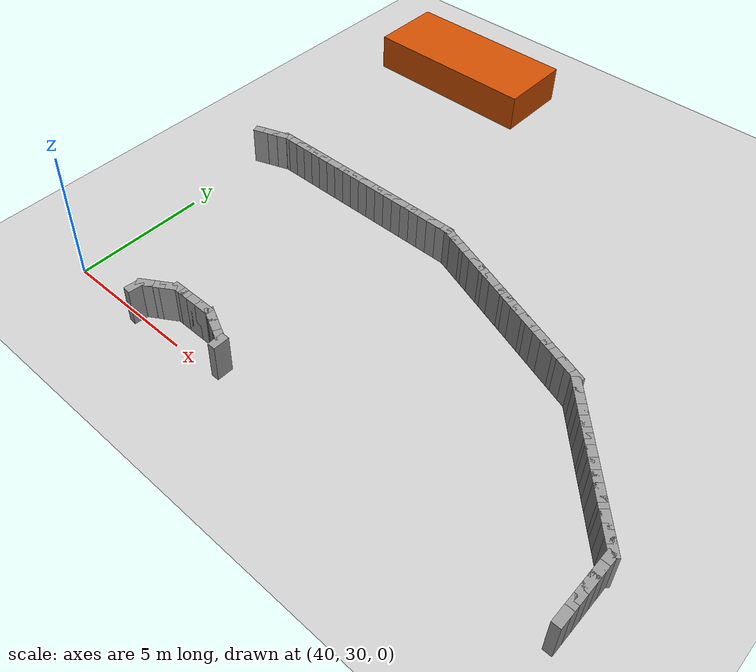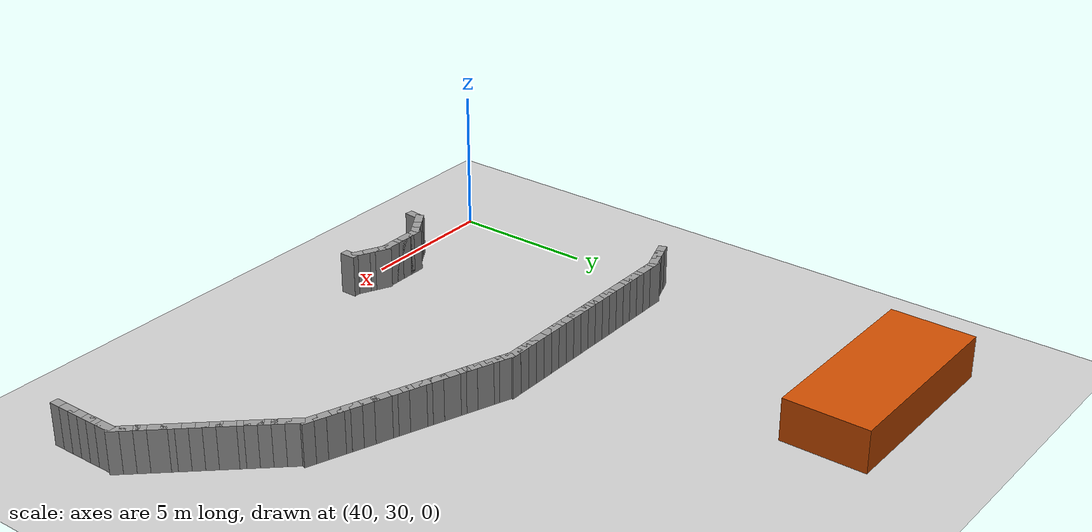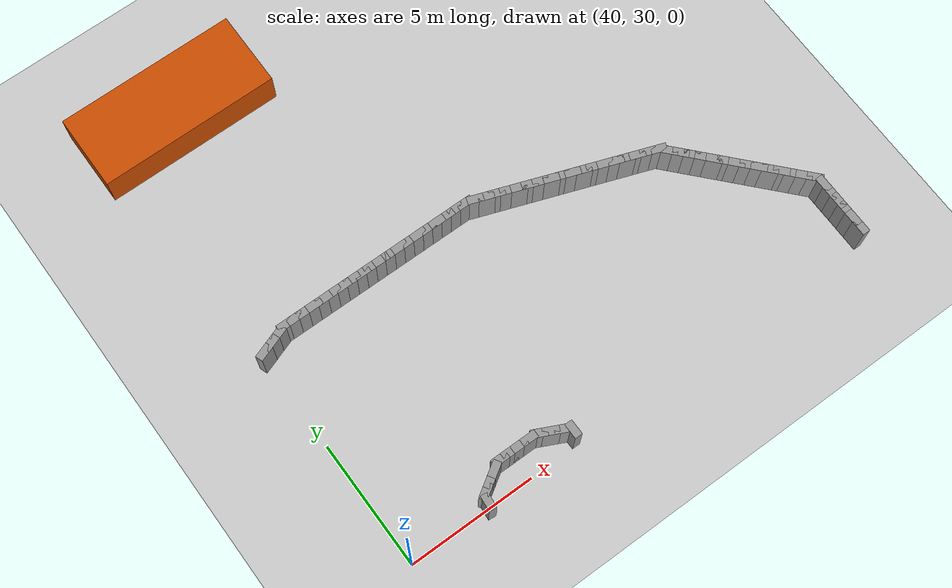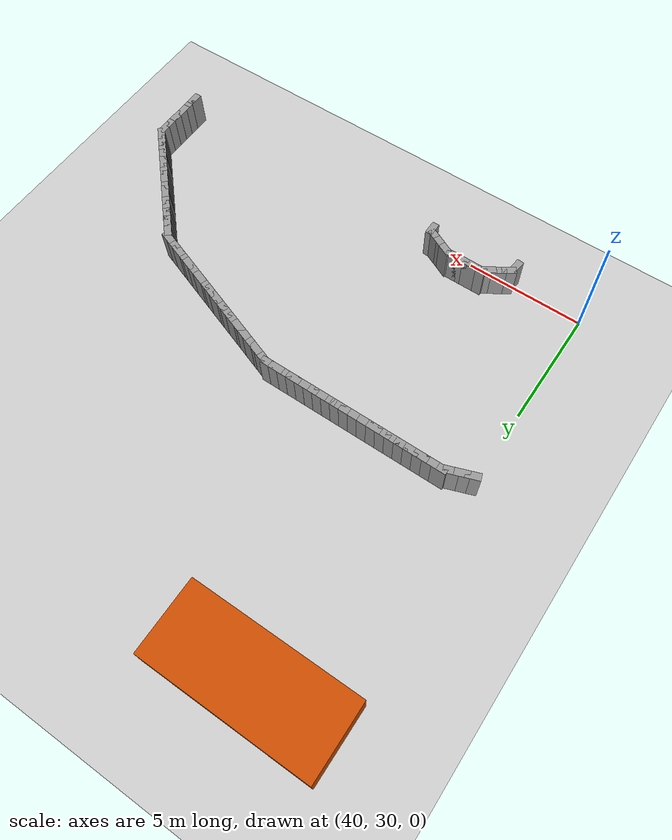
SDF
<sdf version="1.5">
 <world name="img_rect_obs">
  <include><uri>model://sun</uri></include>
  <include><uri>model://ground_plane</uri></include>
  <model name="wallL_102">
   <static>true</static>
   <pose>59.431 30.147 0.750 0 0 1.571</pose>
   <link name="link">
    <collision name="col"><geometry><box><size>0.600 0.300 1.500</size></box></geometry></collision>
    <visual name="vis">
     <geometry><box><size>0.600 0.300 1.500</size></box></geometry>
     <material><ambient>0.6 0.6 0.6 1</ambient><diffuse>0.6 0.6 0.6 1</diffuse></material>
    </visual>
   </link>
  </model>
  <model name="wallL_103">
   <static>true</static>
   <pose>59.431 30.547 0.750 0 0 1.571</pose>
   <link name="link">
    <collision name="col"><geometry><box><size>0.600 0.300 1.500</size></box></geometry></collision>
    <visual name="vis">
     <geometry><box><size>0.600 0.300 1.500</size></box></geometry>
     <material><ambient>0.6 0.6 0.6 1</ambient><diffuse>0.6 0.6 0.6 1</diffuse></material>
    </visual>
   </link>
  </model>
  <model name="wallL_104">
   <static>true</static>
   <pose>59.431 30.947 0.750 0 0 1.571</pose>
   <link name="link">
    <collision name="col"><geometry><box><size>0.600 0.300 1.500</size></box></geometry></collision>
    <visual name="vis">
     <geometry><box><size>0.600 0.300 1.500</size></box></geometry>
     <material><ambient>0.6 0.6 0.6 1</ambient><diffuse>0.6 0.6 0.6 1</diffuse></material>
    </visual>
   </link>
  </model>
  <model name="wallL_105">
   <static>true</static>
   <pose>59.431 31.347 0.750 0 0 1.571</pose>
   <link name="link">
    <collision name="col"><geometry><box><size>0.600 0.300 1.500</size></box></geometry></collision>
    <visual name="vis">
     <geometry><box><size>0.600 0.300 1.500</size></box></geometry>
     <material><ambient>0.6 0.6 0.6 1</ambient><diffuse>0.6 0.6 0.6 1</diffuse></material>
    </visual>
   </link>
  </model>
  <model name="wallL_106">
   <static>true</static>
   <pose>59.431 31.747 0.750 0 0 1.571</pose>
   <link name="link">
    <collision name="col"><geometry><box><size>0.600 0.300 1.500</size></box></geometry></collision>
    <visual name="vis">
     <geometry><box><size>0.600 0.300 1.500</size></box></geometry>
     <material><ambient>0.6 0.6 0.6 1</ambient><diffuse>0.6 0.6 0.6 1</diffuse></material>
    </visual>
   </link>
  </model>
  <model name="wallL_107">
   <static>true</static>
   <pose>59.431 32.147 0.750 0 0 1.571</pose>
   <link name="link">
    <collision name="col"><geometry><box><size>0.600 0.300 1.500</size></box></geometry></collision>
    <visual name="vis">
     <geometry><box><size>0.600 0.300 1.500</size></box></geometry>
     <material><ambient>0.6 0.6 0.6 1</ambient><diffuse>0.6 0.6 0.6 1</diffuse></material>
    </visual>
   </link>
  </model>
  <model name="wallL_108">
   <static>true</static>
   <pose>59.347 32.514 0.750 0 0 2.312</pose>
   <link name="link">
    <collision name="col"><geometry><box><size>0.600 0.300 1.500</size></box></geometry></collision>
    <visual name="vis">
     <geometry><box><size>0.600 0.300 1.500</size></box></geometry>
     <material><ambient>0.6 0.6 0.6 1</ambient><diffuse>0.6 0.6 0.6 1</diffuse></material>
    </visual>
   </link>
  </model>
  <model name="wallL_109">
   <static>true</static>
   <pose>59.077 32.809 0.750 0 0 2.312</pose>
   <link name="link">
    <collision name="col"><geometry><box><size>0.600 0.300 1.500</size></box></geometry></collision>
    <visual name="vis">
     <geometry><box><size>0.600 0.300 1.500</size></box></geometry>
     <material><ambient>0.6 0.6 0.6 1</ambient><diffuse>0.6 0.6 0.6 1</diffuse></material>
    </visual>
   </link>
  </model>
  <model name="wallL_110">
   <static>true</static>
   <pose>58.807 33.104 0.750 0 0 2.312</pose>
   <link name="link">
    <collision name="col"><geometry><box><size>0.600 0.300 1.500</size></box></geometry></collision>
    <visual name="vis">
     <geometry><box><size>0.600 0.300 1.500</size></box></geometry>
     <material><ambient>0.6 0.6 0.6 1</ambient><diffuse>0.6 0.6 0.6 1</diffuse></material>
    </visual>
   </link>
  </model>
  <model name="wallL_111">
   <static>true</static>
   <pose>58.537 33.399 0.750 0 0 2.312</pose>
   <link name="link">
    <collision name="col"><geometry><box><size>0.600 0.300 1.500</size></box></geometry></collision>
    <visual name="vis">
     <geometry><box><size>0.600 0.300 1.500</size></box></geometry>
     <material><ambient>0.6 0.6 0.6 1</ambient><diffuse>0.6 0.6 0.6 1</diffuse></material>
    </visual>
   </link>
  </model>
  <model name="wallL_112">
   <static>true</static>
   <pose>58.266 33.694 0.750 0 0 2.312</pose>
   <link name="link">
    <collision name="col"><geometry><box><size>0.600 0.300 1.500</size></box></geometry></collision>
    <visual name="vis">
     <geometry><box><size>0.600 0.300 1.500</size></box></geometry>
     <material><ambient>0.6 0.6 0.6 1</ambient><diffuse>0.6 0.6 0.6 1</diffuse></material>
    </visual>
   </link>
  </model>
  <model name="wallL_113">
   <static>true</static>
   <pose>57.996 33.989 0.750 0 0 2.312</pose>
   <link name="link">
    <collision name="col"><geometry><box><size>0.600 0.300 1.500</size></box></geometry></collision>
    <visual name="vis">
     <geometry><box><size>0.600 0.300 1.500</size></box></geometry>
     <material><ambient>0.6 0.6 0.6 1</ambient><diffuse>0.6 0.6 0.6 1</diffuse></material>
    </visual>
   </link>
  </model>
  <model name="wallL_114">
   <static>true</static>
   <pose>57.726 34.284 0.750 0 0 2.312</pose>
   <link name="link">
    <collision name="col"><geometry><box><size>0.600 0.300 1.500</size></box></geometry></collision>
    <visual name="vis">
     <geometry><box><size>0.600 0.300 1.500</size></box></geometry>
     <material><ambient>0.6 0.6 0.6 1</ambient><diffuse>0.6 0.6 0.6 1</diffuse></material>
    </visual>
   </link>
  </model>
  <model name="wallL_115">
   <static>true</static>
   <pose>57.456 34.579 0.750 0 0 2.312</pose>
   <link name="link">
    <collision name="col"><geometry><box><size>0.600 0.300 1.500</size></box></geometry></collision>
    <visual name="vis">
     <geometry><box><size>0.600 0.300 1.500</size></box></geometry>
     <material><ambient>0.6 0.6 0.6 1</ambient><diffuse>0.6 0.6 0.6 1</diffuse></material>
    </visual>
   </link>
  </model>
  <model name="wallL_116">
   <static>true</static>
   <pose>57.186 34.874 0.750 0 0 2.312</pose>
   <link name="link">
    <collision name="col"><geometry><box><size>0.600 0.300 1.500</size></box></geometry></collision>
    <visual name="vis">
     <geometry><box><size>0.600 0.300 1.500</size></box></geometry>
     <material><ambient>0.6 0.6 0.6 1</ambient><diffuse>0.6 0.6 0.6 1</diffuse></material>
    </visual>
   </link>
  </model>
  <model name="wallL_117">
   <static>true</static>
   <pose>56.915 35.169 0.750 0 0 2.312</pose>
   <link name="link">
    <collision name="col"><geometry><box><size>0.600 0.300 1.500</size></box></geometry></collision>
    <visual name="vis">
     <geometry><box><size>0.600 0.300 1.500</size></box></geometry>
     <material><ambient>0.6 0.6 0.6 1</ambient><diffuse>0.6 0.6 0.6 1</diffuse></material>
    </visual>
   </link>
  </model>
  <model name="wallL_118">
   <static>true</static>
   <pose>56.645 35.464 0.750 0 0 2.312</pose>
   <link name="link">
    <collision name="col"><geometry><box><size>0.600 0.300 1.500</size></box></geometry></collision>
    <visual name="vis">
     <geometry><box><size>0.600 0.300 1.500</size></box></geometry>
     <material><ambient>0.6 0.6 0.6 1</ambient><diffuse>0.6 0.6 0.6 1</diffuse></material>
    </visual>
   </link>
  </model>
  <model name="wallL_119">
   <static>true</static>
   <pose>56.375 35.759 0.750 0 0 2.312</pose>
   <link name="link">
    <collision name="col"><geometry><box><size>0.600 0.300 1.500</size></box></geometry></collision>
    <visual name="vis">
     <geometry><box><size>0.600 0.300 1.500</size></box></geometry>
     <material><ambient>0.6 0.6 0.6 1</ambient><diffuse>0.6 0.6 0.6 1</diffuse></material>
    </visual>
   </link>
  </model>
  <model name="wallL_120">
   <static>true</static>
   <pose>56.105 36.054 0.750 0 0 2.312</pose>
   <link name="link">
    <collision name="col"><geometry><box><size>0.600 0.300 1.500</size></box></geometry></collision>
    <visual name="vis">
     <geometry><box><size>0.600 0.300 1.500</size></box></geometry>
     <material><ambient>0.6 0.6 0.6 1</ambient><diffuse>0.6 0.6 0.6 1</diffuse></material>
    </visual>
   </link>
  </model>
  <model name="wallL_121">
   <static>true</static>
   <pose>55.835 36.349 0.750 0 0 2.312</pose>
   <link name="link">
    <collision name="col"><geometry><box><size>0.600 0.300 1.500</size></box></geometry></collision>
    <visual name="vis">
     <geometry><box><size>0.600 0.300 1.500</size></box></geometry>
     <material><ambient>0.6 0.6 0.6 1</ambient><diffuse>0.6 0.6 0.6 1</diffuse></material>
    </visual>
   </link>
  </model>
  <model name="wallL_122">
   <static>true</static>
   <pose>55.554 36.628 0.750 0 0 2.798</pose>
   <link name="link">
    <collision name="col"><geometry><box><size>0.600 0.300 1.500</size></box></geometry></collision>
    <visual name="vis">
     <geometry><box><size>0.600 0.300 1.500</size></box></geometry>
     <material><ambient>0.6 0.6 0.6 1</ambient><diffuse>0.6 0.6 0.6 1</diffuse></material>
    </visual>
   </link>
  </model>
  <model name="wallL_123">
   <static>true</static>
   <pose>55.178 36.763 0.750 0 0 2.798</pose>
   <link name="link">
    <collision name="col"><geometry><box><size>0.600 0.300 1.500</size></box></geometry></collision>
    <visual name="vis">
     <geometry><box><size>0.600 0.300 1.500</size></box></geometry>
     <material><ambient>0.6 0.6 0.6 1</ambient><diffuse>0.6 0.6 0.6 1</diffuse></material>
    </visual>
   </link>
  </model>
  <model name="wallL_124">
   <static>true</static>
   <pose>54.801 36.898 0.750 0 0 2.798</pose>
   <link name="link">
    <collision name="col"><geometry><box><size>0.600 0.300 1.500</size></box></geometry></collision>
    <visual name="vis">
     <geometry><box><size>0.600 0.300 1.500</size></box></geometry>
     <material><ambient>0.6 0.6 0.6 1</ambient><diffuse>0.6 0.6 0.6 1</diffuse></material>
    </visual>
   </link>
  </model>
  <model name="wallL_125">
   <static>true</static>
   <pose>54.424 37.032 0.750 0 0 2.798</pose>
   <link name="link">
    <collision name="col"><geometry><box><size>0.600 0.300 1.500</size></box></geometry></collision>
    <visual name="vis">
     <geometry><box><size>0.600 0.300 1.500</size></box></geometry>
     <material><ambient>0.6 0.6 0.6 1</ambient><diffuse>0.6 0.6 0.6 1</diffuse></material>
    </visual>
   </link>
  </model>
  <model name="wallL_126">
   <static>true</static>
   <pose>54.048 37.167 0.750 0 0 2.798</pose>
   <link name="link">
    <collision name="col"><geometry><box><size>0.600 0.300 1.500</size></box></geometry></collision>
    <visual name="vis">
     <geometry><box><size>0.600 0.300 1.500</size></box></geometry>
     <material><ambient>0.6 0.6 0.6 1</ambient><diffuse>0.6 0.6 0.6 1</diffuse></material>
    </visual>
   </link>
  </model>
  <model name="wallL_127">
   <static>true</static>
   <pose>53.671 37.302 0.750 0 0 2.798</pose>
   <link name="link">
    <collision name="col"><geometry><box><size>0.600 0.300 1.500</size></box></geometry></collision>
    <visual name="vis">
     <geometry><box><size>0.600 0.300 1.500</size></box></geometry>
     <material><ambient>0.6 0.6 0.6 1</ambient><diffuse>0.6 0.6 0.6 1</diffuse></material>
    </visual>
   </link>
  </model>
  <model name="wallL_128">
   <static>true</static>
   <pose>53.294 37.437 0.750 0 0 2.798</pose>
   <link name="link">
    <collision name="col"><geometry><box><size>0.600 0.300 1.500</size></box></geometry></collision>
    <visual name="vis">
     <geometry><box><size>0.600 0.300 1.500</size></box></geometry>
     <material><ambient>0.6 0.6 0.6 1</ambient><diffuse>0.6 0.6 0.6 1</diffuse></material>
    </visual>
   </link>
  </model>
  <model name="wallL_129">
   <static>true</static>
   <pose>52.918 37.571 0.750 0 0 2.798</pose>
   <link name="link">
    <collision name="col"><geometry><box><size>0.600 0.300 1.500</size></box></geometry></collision>
    <visual name="vis">
     <geometry><box><size>0.600 0.300 1.500</size></box></geometry>
     <material><ambient>0.6 0.6 0.6 1</ambient><diffuse>0.6 0.6 0.6 1</diffuse></material>
    </visual>
   </link>
  </model>
  <model name="wallL_130">
   <static>true</static>
   <pose>52.541 37.706 0.750 0 0 2.798</pose>
   <link name="link">
    <collision name="col"><geometry><box><size>0.600 0.300 1.500</size></box></geometry></collision>
    <visual name="vis">
     <geometry><box><size>0.600 0.300 1.500</size></box></geometry>
     <material><ambient>0.6 0.6 0.6 1</ambient><diffuse>0.6 0.6 0.6 1</diffuse></material>
    </visual>
   </link>
  </model>
  <model name="wallL_131">
   <static>true</static>
   <pose>52.165 37.841 0.750 0 0 2.798</pose>
   <link name="link">
    <collision name="col"><geometry><box><size>0.600 0.300 1.500</size></box></geometry></collision>
    <visual name="vis">
     <geometry><box><size>0.600 0.300 1.500</size></box></geometry>
     <material><ambient>0.6 0.6 0.6 1</ambient><diffuse>0.6 0.6 0.6 1</diffuse></material>
    </visual>
   </link>
  </model>
  <model name="wallL_132">
   <static>true</static>
   <pose>51.788 37.975 0.750 0 0 2.798</pose>
   <link name="link">
    <collision name="col"><geometry><box><size>0.600 0.300 1.500</size></box></geometry></collision>
    <visual name="vis">
     <geometry><box><size>0.600 0.300 1.500</size></box></geometry>
     <material><ambient>0.6 0.6 0.6 1</ambient><diffuse>0.6 0.6 0.6 1</diffuse></material>
    </visual>
   </link>
  </model>
  <model name="wallL_133">
   <static>true</static>
   <pose>51.411 38.110 0.750 0 0 2.798</pose>
   <link name="link">
    <collision name="col"><geometry><box><size>0.600 0.300 1.500</size></box></geometry></collision>
    <visual name="vis">
     <geometry><box><size>0.600 0.300 1.500</size></box></geometry>
     <material><ambient>0.6 0.6 0.6 1</ambient><diffuse>0.6 0.6 0.6 1</diffuse></material>
    </visual>
   </link>
  </model>
  <model name="wallL_134">
   <static>true</static>
   <pose>51.035 38.245 0.750 0 0 2.798</pose>
   <link name="link">
    <collision name="col"><geometry><box><size>0.600 0.300 1.500</size></box></geometry></collision>
    <visual name="vis">
     <geometry><box><size>0.600 0.300 1.500</size></box></geometry>
     <material><ambient>0.6 0.6 0.6 1</ambient><diffuse>0.6 0.6 0.6 1</diffuse></material>
    </visual>
   </link>
  </model>
  <model name="wallL_135">
   <static>true</static>
   <pose>50.658 38.379 0.750 0 0 2.798</pose>
   <link name="link">
    <collision name="col"><geometry><box><size>0.600 0.300 1.500</size></box></geometry></collision>
    <visual name="vis">
     <geometry><box><size>0.600 0.300 1.500</size></box></geometry>
     <material><ambient>0.6 0.6 0.6 1</ambient><diffuse>0.6 0.6 0.6 1</diffuse></material>
    </visual>
   </link>
  </model>
  <model name="wallL_136">
   <static>true</static>
   <pose>50.281 38.514 0.750 0 0 2.798</pose>
   <link name="link">
    <collision name="col"><geometry><box><size>0.600 0.300 1.500</size></box></geometry></collision>
    <visual name="vis">
     <geometry><box><size>0.600 0.300 1.500</size></box></geometry>
     <material><ambient>0.6 0.6 0.6 1</ambient><diffuse>0.6 0.6 0.6 1</diffuse></material>
    </visual>
   </link>
  </model>
  <model name="wallL_137">
   <static>true</static>
   <pose>49.905 38.649 0.750 0 0 2.798</pose>
   <link name="link">
    <collision name="col"><geometry><box><size>0.600 0.300 1.500</size></box></geometry></collision>
    <visual name="vis">
     <geometry><box><size>0.600 0.300 1.500</size></box></geometry>
     <material><ambient>0.6 0.6 0.6 1</ambient><diffuse>0.6 0.6 0.6 1</diffuse></material>
    </visual>
   </link>
  </model>
  <model name="wallL_138">
   <static>true</static>
   <pose>49.528 38.783 0.750 0 0 2.798</pose>
   <link name="link">
    <collision name="col"><geometry><box><size>0.600 0.300 1.500</size></box></geometry></collision>
    <visual name="vis">
     <geometry><box><size>0.600 0.300 1.500</size></box></geometry>
     <material><ambient>0.6 0.6 0.6 1</ambient><diffuse>0.6 0.6 0.6 1</diffuse></material>
    </visual>
   </link>
  </model>
  <model name="wallL_139">
   <static>true</static>
   <pose>49.151 38.918 0.750 0 0 2.798</pose>
   <link name="link">
    <collision name="col"><geometry><box><size>0.600 0.300 1.500</size></box></geometry></collision>
    <visual name="vis">
     <geometry><box><size>0.600 0.300 1.500</size></box></geometry>
     <material><ambient>0.6 0.6 0.6 1</ambient><diffuse>0.6 0.6 0.6 1</diffuse></material>
    </visual>
   </link>
  </model>
  <model name="wallL_140">
   <static>true</static>
   <pose>48.768 39.015 0.750 0 0 3.142</pose>
   <link name="link">
    <collision name="col"><geometry><box><size>0.600 0.300 1.500</size></box></geometry></collision>
    <visual name="vis">
     <geometry><box><size>0.600 0.300 1.500</size></box></geometry>
     <material><ambient>0.6 0.6 0.6 1</ambient><diffuse>0.6 0.6 0.6 1</diffuse></material>
    </visual>
   </link>
  </model>
  <model name="wallL_141">
   <static>true</static>
   <pose>48.368 39.015 0.750 0 0 3.142</pose>
   <link name="link">
    <collision name="col"><geometry><box><size>0.600 0.300 1.500</size></box></geometry></collision>
    <visual name="vis">
     <geometry><box><size>0.600 0.300 1.500</size></box></geometry>
     <material><ambient>0.6 0.6 0.6 1</ambient><diffuse>0.6 0.6 0.6 1</diffuse></material>
    </visual>
   </link>
  </model>
  <model name="wallL_142">
   <static>true</static>
   <pose>47.968 39.015 0.750 0 0 3.142</pose>
   <link name="link">
    <collision name="col"><geometry><box><size>0.600 0.300 1.500</size></box></geometry></collision>
    <visual name="vis">
     <geometry><box><size>0.600 0.300 1.500</size></box></geometry>
     <material><ambient>0.6 0.6 0.6 1</ambient><diffuse>0.6 0.6 0.6 1</diffuse></material>
    </visual>
   </link>
  </model>
  <model name="wallL_143">
   <static>true</static>
   <pose>47.568 39.015 0.750 0 0 3.142</pose>
   <link name="link">
    <collision name="col"><geometry><box><size>0.600 0.300 1.500</size></box></geometry></collision>
    <visual name="vis">
     <geometry><box><size>0.600 0.300 1.500</size></box></geometry>
     <material><ambient>0.6 0.6 0.6 1</ambient><diffuse>0.6 0.6 0.6 1</diffuse></material>
    </visual>
   </link>
  </model>
  <model name="wallL_144">
   <static>true</static>
   <pose>47.168 39.015 0.750 0 0 3.142</pose>
   <link name="link">
    <collision name="col"><geometry><box><size>0.600 0.300 1.500</size></box></geometry></collision>
    <visual name="vis">
     <geometry><box><size>0.600 0.300 1.500</size></box></geometry>
     <material><ambient>0.6 0.6 0.6 1</ambient><diffuse>0.6 0.6 0.6 1</diffuse></material>
    </visual>
   </link>
  </model>
  <model name="wallL_145">
   <static>true</static>
   <pose>46.768 39.015 0.750 0 0 3.142</pose>
   <link name="link">
    <collision name="col"><geometry><box><size>0.600 0.300 1.500</size></box></geometry></collision>
    <visual name="vis">
     <geometry><box><size>0.600 0.300 1.500</size></box></geometry>
     <material><ambient>0.6 0.6 0.6 1</ambient><diffuse>0.6 0.6 0.6 1</diffuse></material>
    </visual>
   </link>
  </model>
  <model name="wallL_146">
   <static>true</static>
   <pose>46.368 39.015 0.750 0 0 3.142</pose>
   <link name="link">
    <collision name="col"><geometry><box><size>0.600 0.300 1.500</size></box></geometry></collision>
    <visual name="vis">
     <geometry><box><size>0.600 0.300 1.500</size></box></geometry>
     <material><ambient>0.6 0.6 0.6 1</ambient><diffuse>0.6 0.6 0.6 1</diffuse></material>
    </visual>
   </link>
  </model>
  <model name="wallL_147">
   <static>true</static>
   <pose>45.968 39.015 0.750 0 0 3.142</pose>
   <link name="link">
    <collision name="col"><geometry><box><size>0.600 0.300 1.500</size></box></geometry></collision>
    <visual name="vis">
     <geometry><box><size>0.600 0.300 1.500</size></box></geometry>
     <material><ambient>0.6 0.6 0.6 1</ambient><diffuse>0.6 0.6 0.6 1</diffuse></material>
    </visual>
   </link>
  </model>
  <model name="wallL_148">
   <static>true</static>
   <pose>45.568 39.015 0.750 0 0 3.142</pose>
   <link name="link">
    <collision name="col"><geometry><box><size>0.600 0.300 1.500</size></box></geometry></collision>
    <visual name="vis">
     <geometry><box><size>0.600 0.300 1.500</size></box></geometry>
     <material><ambient>0.6 0.6 0.6 1</ambient><diffuse>0.6 0.6 0.6 1</diffuse></material>
    </visual>
   </link>
  </model>
  <model name="wallL_149">
   <static>true</static>
   <pose>45.168 39.015 0.750 0 0 3.142</pose>
   <link name="link">
    <collision name="col"><geometry><box><size>0.600 0.300 1.500</size></box></geometry></collision>
    <visual name="vis">
     <geometry><box><size>0.600 0.300 1.500</size></box></geometry>
     <material><ambient>0.6 0.6 0.6 1</ambient><diffuse>0.6 0.6 0.6 1</diffuse></material>
    </visual>
   </link>
  </model>
  <model name="wallL_150">
   <static>true</static>
   <pose>44.768 39.015 0.750 0 0 3.142</pose>
   <link name="link">
    <collision name="col"><geometry><box><size>0.600 0.300 1.500</size></box></geometry></collision>
    <visual name="vis">
     <geometry><box><size>0.600 0.300 1.500</size></box></geometry>
     <material><ambient>0.6 0.6 0.6 1</ambient><diffuse>0.6 0.6 0.6 1</diffuse></material>
    </visual>
   </link>
  </model>
  <model name="wallL_151">
   <static>true</static>
   <pose>44.368 39.015 0.750 0 0 3.142</pose>
   <link name="link">
    <collision name="col"><geometry><box><size>0.600 0.300 1.500</size></box></geometry></collision>
    <visual name="vis">
     <geometry><box><size>0.600 0.300 1.500</size></box></geometry>
     <material><ambient>0.6 0.6 0.6 1</ambient><diffuse>0.6 0.6 0.6 1</diffuse></material>
    </visual>
   </link>
  </model>
  <model name="wallL_152">
   <static>true</static>
   <pose>43.968 39.015 0.750 0 0 3.142</pose>
   <link name="link">
    <collision name="col"><geometry><box><size>0.600 0.300 1.500</size></box></geometry></collision>
    <visual name="vis">
     <geometry><box><size>0.600 0.300 1.500</size></box></geometry>
     <material><ambient>0.6 0.6 0.6 1</ambient><diffuse>0.6 0.6 0.6 1</diffuse></material>
    </visual>
   </link>
  </model>
  <model name="wallL_153">
   <static>true</static>
   <pose>43.568 39.015 0.750 0 0 3.142</pose>
   <link name="link">
    <collision name="col"><geometry><box><size>0.600 0.300 1.500</size></box></geometry></collision>
    <visual name="vis">
     <geometry><box><size>0.600 0.300 1.500</size></box></geometry>
     <material><ambient>0.6 0.6 0.6 1</ambient><diffuse>0.6 0.6 0.6 1</diffuse></material>
    </visual>
   </link>
  </model>
  <model name="wallL_154">
   <static>true</static>
   <pose>43.168 39.015 0.750 0 0 3.142</pose>
   <link name="link">
    <collision name="col"><geometry><box><size>0.600 0.300 1.500</size></box></geometry></collision>
    <visual name="vis">
     <geometry><box><size>0.600 0.300 1.500</size></box></geometry>
     <material><ambient>0.6 0.6 0.6 1</ambient><diffuse>0.6 0.6 0.6 1</diffuse></material>
    </visual>
   </link>
  </model>
  <model name="wallL_155">
   <static>true</static>
   <pose>42.768 39.015 0.750 0 0 3.142</pose>
   <link name="link">
    <collision name="col"><geometry><box><size>0.600 0.300 1.500</size></box></geometry></collision>
    <visual name="vis">
     <geometry><box><size>0.600 0.300 1.500</size></box></geometry>
     <material><ambient>0.6 0.6 0.6 1</ambient><diffuse>0.6 0.6 0.6 1</diffuse></material>
    </visual>
   </link>
  </model>
  <model name="wallL_156">
   <static>true</static>
   <pose>42.368 39.015 0.750 0 0 3.142</pose>
   <link name="link">
    <collision name="col"><geometry><box><size>0.600 0.300 1.500</size></box></geometry></collision>
    <visual name="vis">
     <geometry><box><size>0.600 0.300 1.500</size></box></geometry>
     <material><ambient>0.6 0.6 0.6 1</ambient><diffuse>0.6 0.6 0.6 1</diffuse></material>
    </visual>
   </link>
  </model>
  <model name="wallL_157">
   <static>true</static>
   <pose>41.968 39.015 0.750 0 0 3.142</pose>
   <link name="link">
    <collision name="col"><geometry><box><size>0.600 0.300 1.500</size></box></geometry></collision>
    <visual name="vis">
     <geometry><box><size>0.600 0.300 1.500</size></box></geometry>
     <material><ambient>0.6 0.6 0.6 1</ambient><diffuse>0.6 0.6 0.6 1</diffuse></material>
    </visual>
   </link>
  </model>
  <model name="wallL_158">
   <static>true</static>
   <pose>41.568 39.015 0.750 0 0 3.142</pose>
   <link name="link">
    <collision name="col"><geometry><box><size>0.600 0.300 1.500</size></box></geometry></collision>
    <visual name="vis">
     <geometry><box><size>0.600 0.300 1.500</size></box></geometry>
     <material><ambient>0.6 0.6 0.6 1</ambient><diffuse>0.6 0.6 0.6 1</diffuse></material>
    </visual>
   </link>
  </model>
  <model name="wallL_159">
   <static>true</static>
   <pose>41.168 39.015 0.750 0 0 3.142</pose>
   <link name="link">
    <collision name="col"><geometry><box><size>0.600 0.300 1.500</size></box></geometry></collision>
    <visual name="vis">
     <geometry><box><size>0.600 0.300 1.500</size></box></geometry>
     <material><ambient>0.6 0.6 0.6 1</ambient><diffuse>0.6 0.6 0.6 1</diffuse></material>
    </visual>
   </link>
  </model>
  <model name="wallL_160">
   <static>true</static>
   <pose>40.789 38.897 0.750 0 0 -2.798</pose>
   <link name="link">
    <collision name="col"><geometry><box><size>0.600 0.300 1.500</size></box></geometry></collision>
    <visual name="vis">
     <geometry><box><size>0.600 0.300 1.500</size></box></geometry>
     <material><ambient>0.6 0.6 0.6 1</ambient><diffuse>0.6 0.6 0.6 1</diffuse></material>
    </visual>
   </link>
  </model>
  <model name="wallL_161">
   <static>true</static>
   <pose>40.412 38.762 0.750 0 0 -2.798</pose>
   <link name="link">
    <collision name="col"><geometry><box><size>0.600 0.300 1.500</size></box></geometry></collision>
    <visual name="vis">
     <geometry><box><size>0.600 0.300 1.500</size></box></geometry>
     <material><ambient>0.6 0.6 0.6 1</ambient><diffuse>0.6 0.6 0.6 1</diffuse></material>
    </visual>
   </link>
  </model>
  <model name="wallL_162">
   <static>true</static>
   <pose>40.036 38.627 0.750 0 0 -2.798</pose>
   <link name="link">
    <collision name="col"><geometry><box><size>0.600 0.300 1.500</size></box></geometry></collision>
    <visual name="vis">
     <geometry><box><size>0.600 0.300 1.500</size></box></geometry>
     <material><ambient>0.6 0.6 0.6 1</ambient><diffuse>0.6 0.6 0.6 1</diffuse></material>
    </visual>
   </link>
  </model>
  <model name="wallR_1">
   <static>true</static>
   <pose>43.146 29.984 0.750 0 0 1.459</pose>
   <link name="link">
    <collision name="col"><geometry><box><size>0.600 0.300 1.500</size></box></geometry></collision>
    <visual name="vis">
     <geometry><box><size>0.600 0.300 1.500</size></box></geometry>
     <material><ambient>0.6 0.6 0.6 1</ambient><diffuse>0.6 0.6 0.6 1</diffuse></material>
    </visual>
   </link>
  </model>
  <model name="wallR_2">
   <static>true</static>
   <pose>43.287 30.321 0.750 0 0 0.568</pose>
   <link name="link">
    <collision name="col"><geometry><box><size>0.600 0.300 1.500</size></box></geometry></collision>
    <visual name="vis">
     <geometry><box><size>0.600 0.300 1.500</size></box></geometry>
     <material><ambient>0.6 0.6 0.6 1</ambient><diffuse>0.6 0.6 0.6 1</diffuse></material>
    </visual>
   </link>
  </model>
  <model name="wallR_3">
   <static>true</static>
   <pose>43.624 30.537 0.750 0 0 0.568</pose>
   <link name="link">
    <collision name="col"><geometry><box><size>0.600 0.300 1.500</size></box></geometry></collision>
    <visual name="vis">
     <geometry><box><size>0.600 0.300 1.500</size></box></geometry>
     <material><ambient>0.6 0.6 0.6 1</ambient><diffuse>0.6 0.6 0.6 1</diffuse></material>
    </visual>
   </link>
  </model>
  <model name="wallR_4">
   <static>true</static>
   <pose>43.961 30.752 0.750 0 0 0.568</pose>
   <link name="link">
    <collision name="col"><geometry><box><size>0.600 0.300 1.500</size></box></geometry></collision>
    <visual name="vis">
     <geometry><box><size>0.600 0.300 1.500</size></box></geometry>
     <material><ambient>0.6 0.6 0.6 1</ambient><diffuse>0.6 0.6 0.6 1</diffuse></material>
    </visual>
   </link>
  </model>
  <model name="wallR_5">
   <static>true</static>
   <pose>44.314 30.914 0.750 0 0 0.000</pose>
   <link name="link">
    <collision name="col"><geometry><box><size>0.600 0.300 1.500</size></box></geometry></collision>
    <visual name="vis">
     <geometry><box><size>0.600 0.300 1.500</size></box></geometry>
     <material><ambient>0.6 0.6 0.6 1</ambient><diffuse>0.6 0.6 0.6 1</diffuse></material>
    </visual>
   </link>
  </model>
  <model name="wallR_6">
   <static>true</static>
   <pose>44.714 30.914 0.750 0 0 0.000</pose>
   <link name="link">
    <collision name="col"><geometry><box><size>0.600 0.300 1.500</size></box></geometry></collision>
    <visual name="vis">
     <geometry><box><size>0.600 0.300 1.500</size></box></geometry>
     <material><ambient>0.6 0.6 0.6 1</ambient><diffuse>0.6 0.6 0.6 1</diffuse></material>
    </visual>
   </link>
  </model>
  <model name="wallR_7">
   <static>true</static>
   <pose>45.114 30.914 0.750 0 0 0.000</pose>
   <link name="link">
    <collision name="col"><geometry><box><size>0.600 0.300 1.500</size></box></geometry></collision>
    <visual name="vis">
     <geometry><box><size>0.600 0.300 1.500</size></box></geometry>
     <material><ambient>0.6 0.6 0.6 1</ambient><diffuse>0.6 0.6 0.6 1</diffuse></material>
    </visual>
   </link>
  </model>
  <model name="wallR_8">
   <static>true</static>
   <pose>45.514 30.914 0.750 0 0 0.000</pose>
   <link name="link">
    <collision name="col"><geometry><box><size>0.600 0.300 1.500</size></box></geometry></collision>
    <visual name="vis">
     <geometry><box><size>0.600 0.300 1.500</size></box></geometry>
     <material><ambient>0.6 0.6 0.6 1</ambient><diffuse>0.6 0.6 0.6 1</diffuse></material>
    </visual>
   </link>
  </model>
  <model name="wallR_9">
   <static>true</static>
   <pose>45.901 30.858 0.750 0 0 -0.449</pose>
   <link name="link">
    <collision name="col"><geometry><box><size>0.600 0.300 1.500</size></box></geometry></collision>
    <visual name="vis">
     <geometry><box><size>0.600 0.300 1.500</size></box></geometry>
     <material><ambient>0.6 0.6 0.6 1</ambient><diffuse>0.6 0.6 0.6 1</diffuse></material>
    </visual>
   </link>
  </model>
  <model name="wallR_10">
   <static>true</static>
   <pose>46.262 30.684 0.750 0 0 -0.449</pose>
   <link name="link">
    <collision name="col"><geometry><box><size>0.600 0.300 1.500</size></box></geometry></collision>
    <visual name="vis">
     <geometry><box><size>0.600 0.300 1.500</size></box></geometry>
     <material><ambient>0.6 0.6 0.6 1</ambient><diffuse>0.6 0.6 0.6 1</diffuse></material>
    </visual>
   </link>
  </model>
  <model name="wallR_11">
   <static>true</static>
   <pose>46.622 30.511 0.750 0 0 -0.449</pose>
   <link name="link">
    <collision name="col"><geometry><box><size>0.600 0.300 1.500</size></box></geometry></collision>
    <visual name="vis">
     <geometry><box><size>0.600 0.300 1.500</size></box></geometry>
     <material><ambient>0.6 0.6 0.6 1</ambient><diffuse>0.6 0.6 0.6 1</diffuse></material>
    </visual>
   </link>
  </model>
  <model name="wallR_12">
   <static>true</static>
   <pose>46.899 30.285 0.750 0 0 -1.571</pose>
   <link name="link">
    <collision name="col"><geometry><box><size>0.600 0.300 1.500</size></box></geometry></collision>
    <visual name="vis">
     <geometry><box><size>0.600 0.300 1.500</size></box></geometry>
     <material><ambient>0.6 0.6 0.6 1</ambient><diffuse>0.6 0.6 0.6 1</diffuse></material>
    </visual>
   </link>
  </model>
  <model name="obs_6">
   <static>true</static>
   <pose>42.500 48.500 0.750 0 0 -1.571</pose>
   <link name="link">
    <collision name="col"><geometry><box><size>3.000 7.000 1.500</size></box></geometry></collision>
    <visual name="vis">
     <geometry><box><size>3.000 7.000 1.500</size></box></geometry>
     <material><ambient>0.8 0.3 0.0 1</ambient><diffuse>0.8 0.3 0.0 1</diffuse></material>
    </visual>
   </link>
  </model>
 </world>
</sdf>
